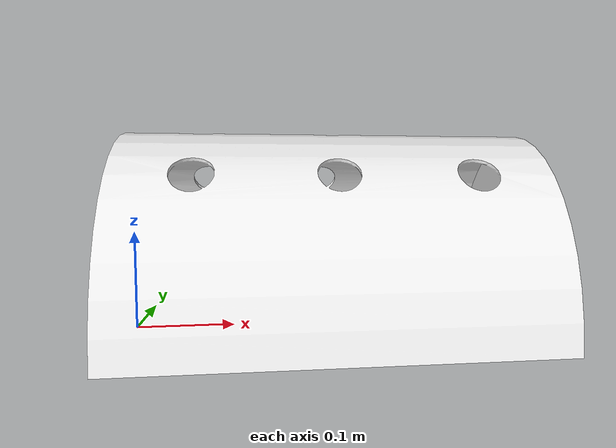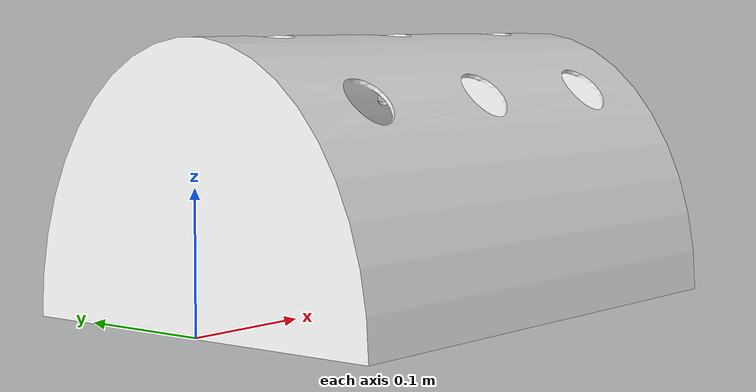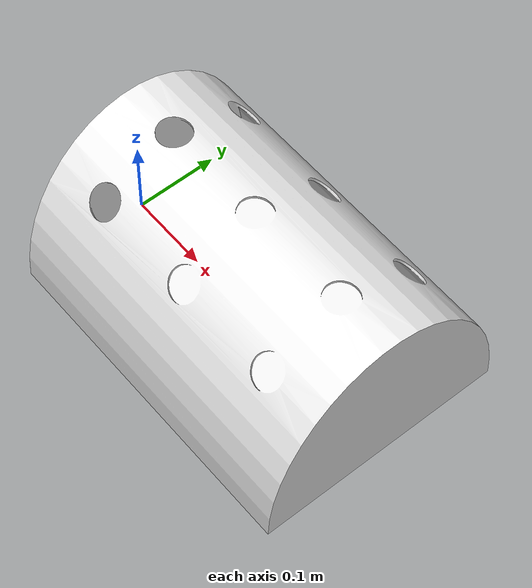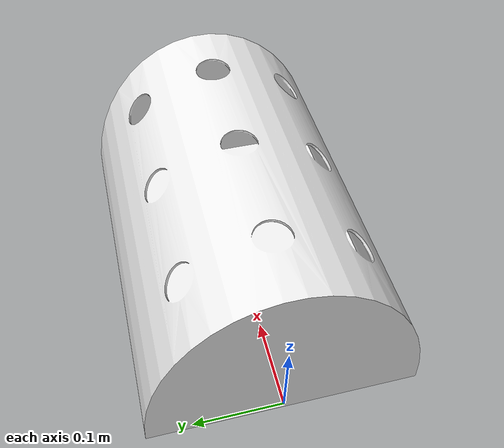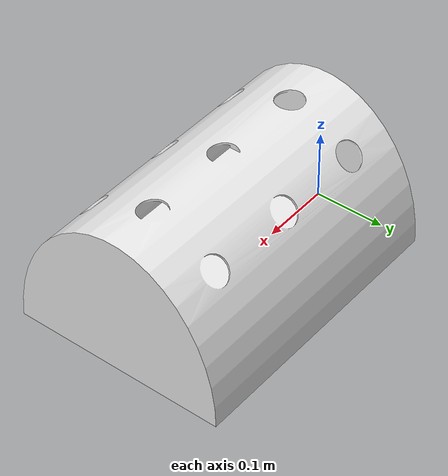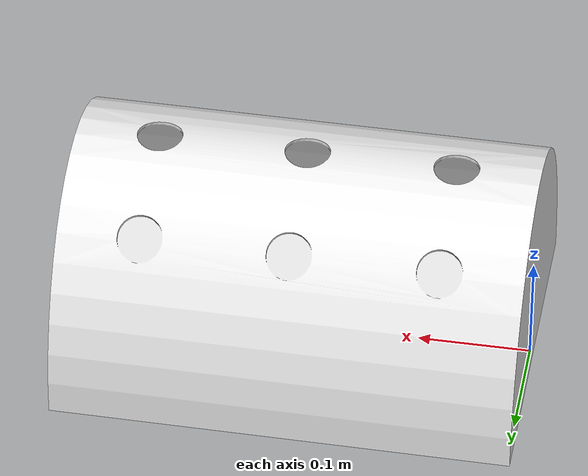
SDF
<?xml version='1.0'?>
<sdf version='1.6'>
  <model name='enterocoelia_model'>
    <link name='link_0'>
      <pose frame=''>0 0 0 1.57 0 0</pose>
      <visual name='visual'>
        <pose frame=''>0 0 0 0 0 0</pose>
        <geometry>
          <mesh>
            <uri>model://enterocoelia_model.STL</uri>
            <scale>1 1 1</scale>
          </mesh>
        </geometry>
        <material>
          <lighting>1</lighting>
          <script>
            <uri>file://media/materials/scripts/gazebo.material</uri>
            <name>Gazebo/White</name>
          </script>
        </material>
        <transparency>0</transparency>
        <cast_shadows>1</cast_shadows>
      </visual>
      <collision name='collision'>
        <laser_retro>0</laser_retro>
        <max_contacts>10</max_contacts>
        <pose frame=''>0 0 0 1.57 0 0</pose>
        <geometry>
          <mesh>
            <uri>model://enterocoelia_model.STL</uri>
            <scale>1 1 1</scale>
          </mesh>
        </geometry>
        <surface>
          <friction>
            <ode>
              <mu>1</mu>
              <mu2>1</mu2>
              <fdir1>0 0 0</fdir1>
              <slip1>0</slip1>
              <slip2>0</slip2>
            </ode>
            <torsional>
              <coefficient>1</coefficient>
              <patch_radius>0</patch_radius>
              <surface_radius>0</surface_radius>
              <use_patch_radius>1</use_patch_radius>
              <ode>
                <slip>0</slip>
              </ode>
            </torsional>
          </friction>
          <bounce>
            <restitution_coefficient>0</restitution_coefficient>
            <threshold>1e+06</threshold>
          </bounce>
          <contact>
            <collide_without_contact>0</collide_without_contact>
            <collide_without_contact_bitmask>1</collide_without_contact_bitmask>
            <collide_bitmask>1</collide_bitmask>
            <ode>
              <soft_cfm>0</soft_cfm>
              <soft_erp>0.2</soft_erp>
              <kp>1e+13</kp>
              <kd>1</kd>
              <max_vel>0.01</max_vel>
              <min_depth>0</min_depth>
            </ode>
            <bullet>
              <split_impulse>1</split_impulse>
              <split_impulse_penetration_threshold>-0.01</split_impulse_penetration_threshold>
              <soft_cfm>0</soft_cfm>
              <soft_erp>0.2</soft_erp>
              <kp>1e+13</kp>
              <kd>1</kd>
            </bullet>
          </contact>
        </surface>
      </collision>
    </link>
    <static>1</static>
    <allow_auto_disable>1</allow_auto_disable>
  </model>
</sdf>
